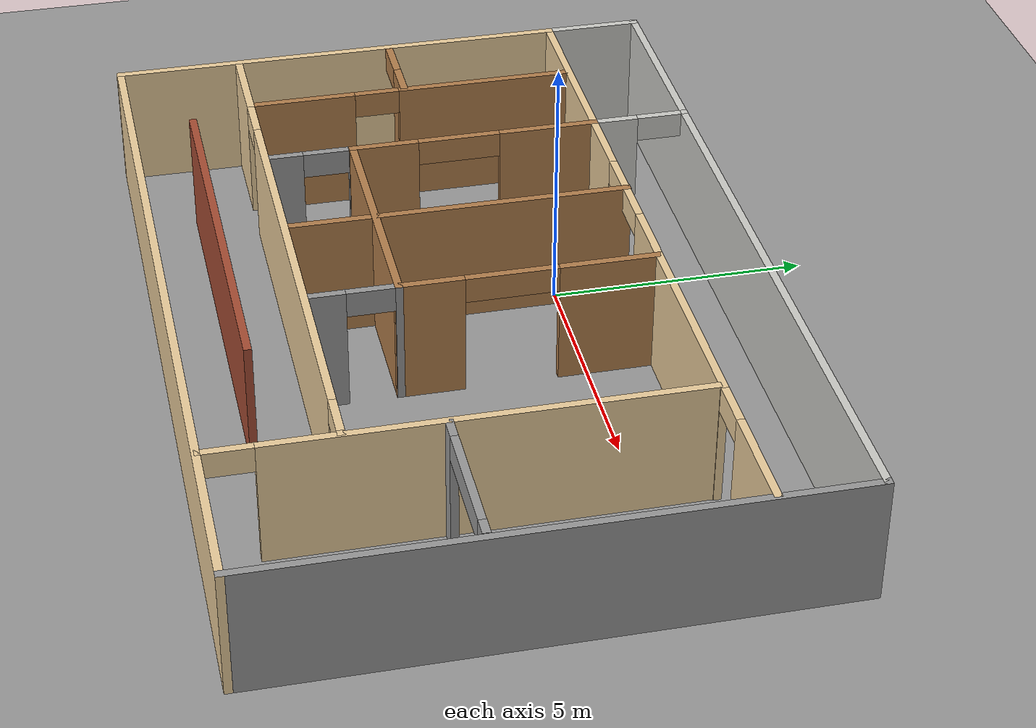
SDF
<sdf version="1.6">
 <world name="default">
  <model name="ground_plane">
   <static>1</static>
   <link name="link">
    <collision name="collision">
     <geometry><plane><normal>0 0 1</normal><size>100 100</size></plane></geometry>
     <surface><friction><ode><mu>100</mu><mu2>50</mu2></ode></friction></surface>
    </collision>
    <visual name="visual">
     <cast_shadows>0</cast_shadows>
     <geometry><plane><normal>0 0 1</normal><size>100 100</size></plane></geometry>
     <material>
      <script><uri>file://media/materials/scripts/gazebo.material</uri><name>Gazebo/Grey</name></script>
     </material>
    </visual>
   </link>
  </model>
  <model name="Building">
   <pose>1.84471 -2.27422 0 0 -0 0</pose>
   <link name="Wall_0">
    <collision name="Wall_0_Collision">
     <geometry><box><size>5 0.15 2.5</size></box></geometry>
     <pose>0 0 1.25 0 -0 0</pose>
    </collision>
    <visual name="Wall_0_Visual">
     <pose>0 0 1.25 0 -0 0</pose>
     <geometry><box><size>5 0.15 2.5</size></box></geometry>
     <material>
      <script><uri>file://media/materials/scripts/gazebo.material</uri><name>Gazebo/Wood</name></script>
      <ambient>1 1 1 1</ambient>
     </material>
     <meta><layer>0</layer></meta>
    </visual>
    <pose>-1.65 -1.275 0 0 -0 0</pose>
   </link>
   <link name="Wall_10">
    <collision name="Wall_10_Collision">
     <geometry><box><size>11 0.15 2.5</size></box></geometry>
     <pose>0 0 1.25 0 -0 0</pose>
    </collision>
    <visual name="Wall_10_Visual">
     <pose>0 0 1.25 0 -0 0</pose>
     <geometry><box><size>11 0.15 2.5</size></box></geometry>
     <material>
      <script><uri>file://media/materials/scripts/gazebo.material</uri><name>Gazebo/Grey</name></script>
      <ambient>1 1 1 1</ambient>
     </material>
     <meta><layer>0</layer></meta>
    </visual>
    <pose>7.925 0 0 0 0 -1.5708</pose>
   </link>
   <link name="Wall_11">
    <collision name="Wall_11_Collision">
     <geometry><box><size>16 0.15 2.5</size></box></geometry>
     <pose>0 0 1.25 0 -0 0</pose>
    </collision>
    <visual name="Wall_11_Visual">
     <pose>0 0 1.25 0 -0 0</pose>
     <geometry><box><size>16 0.15 2.5</size></box></geometry>
     <material>
      <script><uri>file://media/materials/scripts/gazebo.material</uri><name>Gazebo/Grey</name></script>
      <ambient>0.921569 0.807843 0.615686 1</ambient>
     </material>
     <meta><layer>0</layer></meta>
    </visual>
    <pose>0 -5.425 0 0 -0 3.14159</pose>
   </link>
   <link name="Wall_12">
    <collision name="Wall_12_Collision">
     <geometry><box><size>9.15 0.15 2.5</size></box></geometry>
     <pose>0 0 1.25 0 -0 0</pose>
    </collision>
    <visual name="Wall_12_Visual">
     <pose>0 0 1.25 0 -0 0</pose>
     <geometry><box><size>9.15 0.15 2.5</size></box></geometry>
     <material>
      <script><uri>file://media/materials/scripts/gazebo.material</uri><name>Gazebo/Grey</name></script>
      <ambient>0.921569 0.807843 0.615686 1</ambient>
     </material>
     <meta><layer>0</layer></meta>
    </visual>
    <pose>-7.925 -0.925 0 0 -0 1.5708</pose>
   </link>
   <link name="Wall_14">
    <collision name="Wall_14_Collision">
     <geometry><box><size>5 0.15 2.5</size></box></geometry>
     <pose>0 0 1.25 0 -0 0</pose>
    </collision>
    <visual name="Wall_14_Visual">
     <pose>0 0 1.25 0 -0 0</pose>
     <geometry><box><size>5 0.15 2.5</size></box></geometry>
     <material>
      <script><uri>file://media/materials/scripts/gazebo.material</uri><name>Gazebo/Wood</name></script>
      <ambient>1 1 1 1</ambient>
     </material>
     <meta><layer>0</layer></meta>
    </visual>
    <pose>-1.58093 1.16439 0 0 0 -1.5708</pose>
   </link>
   <link name="Wall_16">
    <pose>4.325 3.575 0 0 -0 0</pose>
    <visual name="Wall_16_Visual_0">
     <pose>-1.49954 0 1.25 0 -0 0</pose>
     <geometry><box><size>4.25093 0.15 2.5</size></box></geometry>
     <material>
      <script><uri>file://media/materials/scripts/gazebo.material</uri><name>Gazebo/Grey</name></script>
      <ambient>0.921569 0.807843 0.615686 1</ambient>
     </material>
     <meta><layer>0</layer></meta>
    </visual>
    <collision name="Wall_16_Collision_0">
     <geometry><box><size>4.25093 0.15 2.5</size></box></geometry>
     <pose>-1.49954 0 1.25 0 -0 0</pose>
    </collision>
    <visual name="Wall_16_Visual_1">
     <pose>2.57546 0 1.25 0 -0 0</pose>
     <geometry><box><size>2.09907 0.15 2.5</size></box></geometry>
     <material>
      <script><uri>file://media/materials/scripts/gazebo.material</uri><name>Gazebo/Grey</name></script>
      <ambient>0.921569 0.807843 0.615686 1</ambient>
     </material>
     <meta><layer>0</layer></meta>
    </visual>
    <collision name="Wall_16_Collision_1">
     <geometry><box><size>2.09907 0.15 2.5</size></box></geometry>
     <pose>2.57546 0 1.25 0 -0 0</pose>
    </collision>
    <visual name="Wall_16_Visual_2">
     <pose>1.07593 0 2.25 0 -0 0</pose>
     <geometry><box><size>0.9 0.15 0.5</size></box></geometry>
     <material>
      <script><uri>file://media/materials/scripts/gazebo.material</uri><name>Gazebo/Grey</name></script>
      <ambient>0.921569 0.807843 0.615686 1</ambient>
     </material>
     <meta><layer>0</layer></meta>
    </visual>
    <collision name="Wall_16_Collision_2">
     <geometry><box><size>0.9 0.15 0.5</size></box></geometry>
     <pose>1.07593 0 2.25 0 -0 0</pose>
    </collision>
   </link>
   <link name="Wall_2">
    <pose>-4.075 1.15 0 0 -0 1.5708</pose>
    <visual name="Wall_2_Visual_0">
     <pose>-1.81088 0 1.25 0 -0 0</pose>
     <geometry><box><size>1.37824 0.15 2.5</size></box></geometry>
     <material>
      <script><uri>file://media/materials/scripts/gazebo.material</uri><name>Gazebo/Wood</name></script>
      <ambient>1 1 1 1</ambient>
     </material>
     <meta><layer>0</layer></meta>
    </visual>
    <collision name="Wall_2_Collision_0">
     <geometry><box><size>1.37824 0.15 2.5</size></box></geometry>
     <pose>-1.81088 0 1.25 0 -0 0</pose>
    </collision>
    <visual name="Wall_2_Visual_1">
     <pose>1.50207 0 1.25 0 -0 0</pose>
     <geometry><box><size>1.99587 0.15 2.5</size></box></geometry>
     <material>
      <script><uri>file://media/materials/scripts/gazebo.material</uri><name>Gazebo/Wood</name></script>
      <ambient>1 1 1 1</ambient>
     </material>
     <meta><layer>0</layer></meta>
    </visual>
    <collision name="Wall_2_Collision_1">
     <geometry><box><size>1.99587 0.15 2.5</size></box></geometry>
     <pose>1.50207 0 1.25 0 -0 0</pose>
    </collision>
    <visual name="Wall_2_Visual_2">
     <pose>-0.308816 0 2.25 0 -0 0</pose>
     <geometry><box><size>1.6259 0.15 0.5</size></box></geometry>
     <material>
      <script><uri>file://media/materials/scripts/gazebo.material</uri><name>Gazebo/Wood</name></script>
      <ambient>1 1 1 1</ambient>
     </material>
     <meta><layer>0</layer></meta>
    </visual>
    <collision name="Wall_2_Collision_2">
     <geometry><box><size>1.6259 0.15 0.5</size></box></geometry>
     <pose>-0.308816 0 2.25 0 -0 0</pose>
    </collision>
   </link>
   <link name="Wall_22">
    <pose>4.85192 -0.951678 0 0 0 -1.5708</pose>
    <visual name="Wall_22_Visual_0">
     <pose>-0.499013 0 1.25 0 -0 0</pose>
     <geometry><box><size>8.00197 0.15 2.5</size></box></geometry>
     <material>
      <script><uri>file://media/materials/scripts/gazebo.material</uri><name>Gazebo/Grey</name></script>
      <ambient>0.921569 0.807843 0.615686 1</ambient>
     </material>
     <meta><layer>0</layer></meta>
    </visual>
    <collision name="Wall_22_Collision_0">
     <geometry><box><size>8.00197 0.15 2.5</size></box></geometry>
     <pose>-0.499013 0 1.25 0 -0 0</pose>
    </collision>
    <visual name="Wall_22_Visual_1">
     <pose>4.45099 0 1.25 0 -0 0</pose>
     <geometry><box><size>0.098027 0.15 2.5</size></box></geometry>
     <material>
      <script><uri>file://media/materials/scripts/gazebo.material</uri><name>Gazebo/Grey</name></script>
      <ambient>0.921569 0.807843 0.615686 1</ambient>
     </material>
     <meta><layer>0</layer></meta>
    </visual>
    <collision name="Wall_22_Collision_1">
     <geometry><box><size>0.098027 0.15 2.5</size></box></geometry>
     <pose>4.45099 0 1.25 0 -0 0</pose>
    </collision>
    <visual name="Wall_22_Visual_2">
     <pose>3.95197 0 2.25 0 -0 0</pose>
     <geometry><box><size>0.9 0.15 0.5</size></box></geometry>
     <material>
      <script><uri>file://media/materials/scripts/gazebo.material</uri><name>Gazebo/Grey</name></script>
      <ambient>0.921569 0.807843 0.615686 1</ambient>
     </material>
     <meta><layer>0</layer></meta>
    </visual>
    <collision name="Wall_22_Collision_2">
     <geometry><box><size>0.9 0.15 0.5</size></box></geometry>
     <pose>3.95197 0 2.25 0 -0 0</pose>
    </collision>
   </link>
   <link name="Wall_25">
    <pose>-1.48306 -2.998 0 0 -0 3.14159</pose>
    <visual name="Wall_25_Visual_0">
     <pose>-6.30396 0 1.25 0 -0 0</pose>
     <geometry><box><size>0.142088 0.15 2.5</size></box></geometry>
     <material>
      <script><uri>file://media/materials/scripts/gazebo.material</uri><name>Gazebo/Grey</name></script>
      <ambient>0.921569 0.807843 0.615686 1</ambient>
     </material>
     <meta><layer>0</layer></meta>
    </visual>
    <collision name="Wall_25_Collision_0">
     <geometry><box><size>0.142088 0.15 2.5</size></box></geometry>
     <pose>-6.30396 0 1.25 0 -0 0</pose>
    </collision>
    <visual name="Wall_25_Visual_1">
     <pose>-0.838657 0 1.25 0 -0 0</pose>
     <geometry><box><size>9.05712 0.15 2.5</size></box></geometry>
     <material>
      <script><uri>file://media/materials/scripts/gazebo.material</uri><name>Gazebo/Grey</name></script>
      <ambient>0.921569 0.807843 0.615686 1</ambient>
     </material>
     <meta><layer>0</layer></meta>
    </visual>
    <collision name="Wall_25_Collision_1">
     <geometry><box><size>9.05712 0.15 2.5</size></box></geometry>
     <pose>-0.838657 0 1.25 0 -0 0</pose>
    </collision>
    <visual name="Wall_25_Visual_2">
     <pose>5.48245 0 1.25 0 -0 0</pose>
     <geometry><box><size>1.7851 0.15 2.5</size></box></geometry>
     <material>
      <script><uri>file://media/materials/scripts/gazebo.material</uri><name>Gazebo/Grey</name></script>
      <ambient>0.921569 0.807843 0.615686 1</ambient>
     </material>
     <meta><layer>0</layer></meta>
    </visual>
    <collision name="Wall_25_Collision_2">
     <geometry><box><size>1.7851 0.15 2.5</size></box></geometry>
     <pose>5.48245 0 1.25 0 -0 0</pose>
    </collision>
    <visual name="Wall_25_Visual_3">
     <pose>-5.80007 0 2.25 0 -0 0</pose>
     <geometry><box><size>0.865695 0.15 0.5</size></box></geometry>
     <material>
      <script><uri>file://media/materials/scripts/gazebo.material</uri><name>Gazebo/Grey</name></script>
      <ambient>0.921569 0.807843 0.615686 1</ambient>
     </material>
     <meta><layer>0</layer></meta>
    </visual>
    <collision name="Wall_25_Collision_3">
     <geometry><box><size>0.865695 0.15 0.5</size></box></geometry>
     <pose>-5.80007 0 2.25 0 -0 0</pose>
    </collision>
    <visual name="Wall_25_Visual_4">
     <pose>4.1399 0 2.25 0 -0 0</pose>
     <geometry><box><size>0.9 0.15 0.5</size></box></geometry>
     <material>
      <script><uri>file://media/materials/scripts/gazebo.material</uri><name>Gazebo/Grey</name></script>
      <ambient>0.921569 0.807843 0.615686 1</ambient>
     </material>
     <meta><layer>0</layer></meta>
    </visual>
    <collision name="Wall_25_Collision_4">
     <geometry><box><size>0.9 0.15 0.5</size></box></geometry>
     <pose>4.1399 0 2.25 0 -0 0</pose>
    </collision>
   </link>
   <link name="Wall_27">
    <pose>-6.14068 0.284689 0 0 0 -1.5708</pose>
    <visual name="Wall_27_Visual_0">
     <pose>-1.49304 0 1.25 0 -0 0</pose>
     <geometry><box><size>3.51392 0.15 2.5</size></box></geometry>
     <material>
      <script><uri>file://media/materials/scripts/gazebo.material</uri><name>Gazebo/Wood</name></script>
      <ambient>1 1 1 1</ambient>
     </material>
     <meta><layer>0</layer></meta>
    </visual>
    <collision name="Wall_27_Collision_0">
     <geometry><box><size>3.51392 0.15 2.5</size></box></geometry>
     <pose>-1.49304 0 1.25 0 -0 0</pose>
    </collision>
    <visual name="Wall_27_Visual_1">
     <pose>2.20696 0 1.25 0 -0 0</pose>
     <geometry><box><size>2.08608 0.15 2.5</size></box></geometry>
     <material>
      <script><uri>file://media/materials/scripts/gazebo.material</uri><name>Gazebo/Wood</name></script>
      <ambient>1 1 1 1</ambient>
     </material>
     <meta><layer>0</layer></meta>
    </visual>
    <collision name="Wall_27_Collision_1">
     <geometry><box><size>2.08608 0.15 2.5</size></box></geometry>
     <pose>2.20696 0 1.25 0 -0 0</pose>
    </collision>
    <visual name="Wall_27_Visual_2">
     <pose>0.713923 0 2.25 0 -0 0</pose>
     <geometry><box><size>0.9 0.15 0.5</size></box></geometry>
     <material>
      <script><uri>file://media/materials/scripts/gazebo.material</uri><name>Gazebo/Wood</name></script>
      <ambient>1 1 1 1</ambient>
     </material>
     <meta><layer>0</layer></meta>
    </visual>
    <collision name="Wall_27_Collision_2">
     <geometry><box><size>0.9 0.15 0.5</size></box></geometry>
     <pose>0.713923 0 2.25 0 -0 0</pose>
    </collision>
   </link>
   <link name="Wall_29">
    <pose>6.3362 -1.18544 0 0 -0 0</pose>
    <visual name="Wall_29_Visual_0">
     <pose>-1.27306 0 1.25 0 -0 0</pose>
     <geometry><box><size>0.453869 0.15 2.5</size></box></geometry>
     <material>
      <script><uri>file://media/materials/scripts/gazebo.material</uri><name>Gazebo/Grey</name></script>
      <ambient>1 1 1 1</ambient>
     </material>
     <meta><layer>0</layer></meta>
    </visual>
    <collision name="Wall_29_Collision_0">
     <geometry><box><size>0.453869 0.15 2.5</size></box></geometry>
     <pose>-1.27306 0 1.25 0 -0 0</pose>
    </collision>
    <visual name="Wall_29_Visual_1">
     <pose>1.33007 0 1.25 0 -0 0</pose>
     <geometry><box><size>0.339865 0.15 2.5</size></box></geometry>
     <material>
      <script><uri>file://media/materials/scripts/gazebo.material</uri><name>Gazebo/Grey</name></script>
      <ambient>1 1 1 1</ambient>
     </material>
     <meta><layer>0</layer></meta>
    </visual>
    <collision name="Wall_29_Collision_1">
     <geometry><box><size>0.339865 0.15 2.5</size></box></geometry>
     <pose>1.33007 0 1.25 0 -0 0</pose>
    </collision>
    <visual name="Wall_29_Visual_2">
     <pose>0.057002 0 2.25 0 -0 0</pose>
     <geometry><box><size>2.20627 0.15 0.5</size></box></geometry>
     <material>
      <script><uri>file://media/materials/scripts/gazebo.material</uri><name>Gazebo/Grey</name></script>
      <ambient>1 1 1 1</ambient>
     </material>
     <meta><layer>0</layer></meta>
    </visual>
    <collision name="Wall_29_Collision_2">
     <geometry><box><size>2.20627 0.15 0.5</size></box></geometry>
     <pose>0.057002 0 2.25 0 -0 0</pose>
    </collision>
   </link>
   <link name="Wall_3">
    <pose>-1.65 3.575 0 0 -0 0</pose>
    <visual name="Wall_3_Visual_0">
     <pose>-1.69786 0 1.25 0 -0 0</pose>
     <geometry><box><size>1.60428 0.15 2.5</size></box></geometry>
     <material>
      <script><uri>file://media/materials/scripts/gazebo.material</uri><name>Gazebo/Grey</name></script>
      <ambient>0.921569 0.807843 0.615686 1</ambient>
     </material>
     <meta><layer>0</layer></meta>
    </visual>
    <collision name="Wall_3_Collision_0">
     <geometry><box><size>1.60428 0.15 2.5</size></box></geometry>
     <pose>-1.69786 0 1.25 0 -0 0</pose>
    </collision>
    <visual name="Wall_3_Visual_1">
     <pose>0.066943 0 1.25 0 -0 0</pose>
     <geometry><box><size>0.125322 0.15 2.5</size></box></geometry>
     <material>
      <script><uri>file://media/materials/scripts/gazebo.material</uri><name>Gazebo/Grey</name></script>
      <ambient>0.921569 0.807843 0.615686 1</ambient>
     </material>
     <meta><layer>0</layer></meta>
    </visual>
    <collision name="Wall_3_Collision_1">
     <geometry><box><size>0.125322 0.15 2.5</size></box></geometry>
     <pose>0.066943 0 1.25 0 -0 0</pose>
    </collision>
    <visual name="Wall_3_Visual_2">
     <pose>1.7648 0 1.25 0 -0 0</pose>
     <geometry><box><size>1.4704 0.15 2.5</size></box></geometry>
     <material>
      <script><uri>file://media/materials/scripts/gazebo.material</uri><name>Gazebo/Grey</name></script>
      <ambient>0.921569 0.807843 0.615686 1</ambient>
     </material>
     <meta><layer>0</layer></meta>
    </visual>
    <collision name="Wall_3_Collision_2">
     <geometry><box><size>1.4704 0.15 2.5</size></box></geometry>
     <pose>1.7648 0 1.25 0 -0 0</pose>
    </collision>
    <visual name="Wall_3_Visual_3">
     <pose>-0.445718 0 2.25 0 -0 0</pose>
     <geometry><box><size>0.9 0.15 0.5</size></box></geometry>
     <material>
      <script><uri>file://media/materials/scripts/gazebo.material</uri><name>Gazebo/Grey</name></script>
      <ambient>0.921569 0.807843 0.615686 1</ambient>
     </material>
     <meta><layer>0</layer></meta>
    </visual>
    <collision name="Wall_3_Collision_3">
     <geometry><box><size>0.9 0.15 0.5</size></box></geometry>
     <pose>-0.445718 0 2.25 0 -0 0</pose>
    </collision>
    <visual name="Wall_3_Visual_4">
     <pose>0.579604 0 2.25 0 -0 0</pose>
     <geometry><box><size>0.9 0.15 0.5</size></box></geometry>
     <material>
      <script><uri>file://media/materials/scripts/gazebo.material</uri><name>Gazebo/Grey</name></script>
      <ambient>0.921569 0.807843 0.615686 1</ambient>
     </material>
     <meta><layer>0</layer></meta>
    </visual>
    <collision name="Wall_3_Collision_4">
     <geometry><box><size>0.9 0.15 0.5</size></box></geometry>
     <pose>0.579604 0 2.25 0 -0 0</pose>
    </collision>
   </link>
   <link name="Wall_31">
    <pose>-7.02156 0.143806 0 0 -0 0</pose>
    <visual name="Wall_31_Visual_0">
     <pose>-0.852619 0 1.25 0 -0 0</pose>
     <geometry><box><size>0.044761 0.15 2.5</size></box></geometry>
     <material>
      <script><uri>file://media/materials/scripts/gazebo.material</uri><name>Gazebo/Wood</name></script>
      <ambient>1 1 1 1</ambient>
     </material>
     <meta><layer>0</layer></meta>
    </visual>
    <collision name="Wall_31_Collision_0">
     <geometry><box><size>0.044761 0.15 2.5</size></box></geometry>
     <pose>-0.852619 0 1.25 0 -0 0</pose>
    </collision>
    <visual name="Wall_31_Visual_1">
     <pose>0.472381 0 1.25 0 -0 0</pose>
     <geometry><box><size>0.805239 0.15 2.5</size></box></geometry>
     <material>
      <script><uri>file://media/materials/scripts/gazebo.material</uri><name>Gazebo/Wood</name></script>
      <ambient>1 1 1 1</ambient>
     </material>
     <meta><layer>0</layer></meta>
    </visual>
    <collision name="Wall_31_Collision_1">
     <geometry><box><size>0.805239 0.15 2.5</size></box></geometry>
     <pose>0.472381 0 1.25 0 -0 0</pose>
    </collision>
    <visual name="Wall_31_Visual_2">
     <pose>-0.380239 0 2.25 0 -0 0</pose>
     <geometry><box><size>0.9 0.15 0.5</size></box></geometry>
     <material>
      <script><uri>file://media/materials/scripts/gazebo.material</uri><name>Gazebo/Wood</name></script>
      <ambient>1 1 1 1</ambient>
     </material>
     <meta><layer>0</layer></meta>
    </visual>
    <collision name="Wall_31_Collision_2">
     <geometry><box><size>0.9 0.15 0.5</size></box></geometry>
     <pose>-0.380239 0 2.25 0 -0 0</pose>
    </collision>
   </link>
   <link name="Wall_33">
    <collision name="Wall_33_Collision">
     <geometry><box><size>8 0.15 2.5</size></box></geometry>
     <pose>0 0 1.25 0 -0 0</pose>
    </collision>
    <visual name="Wall_33_Visual">
     <pose>0 0 1.25 0 -0 0</pose>
     <geometry><box><size>8 0.15 2.5</size></box></geometry>
     <material>
      <script><uri>file://media/materials/scripts/gazebo.material</uri><name>Gazebo/Bricks</name></script>
      <ambient>1 1 1 1</ambient>
     </material>
     <meta><layer>0</layer></meta>
    </visual>
    <pose>-1.83273 -4.19373 0 0 -0 0</pose>
   </link>
   <link name="Wall_35">
    <collision name="Wall_35_Collision">
     <geometry><box><size>1.75 0.15 2.5</size></box></geometry>
     <pose>0 0 1.25 0 -0 0</pose>
    </collision>
    <visual name="Wall_35_Visual">
     <pose>0 0 1.25 0 -0 0</pose>
     <geometry><box><size>1.75 0.15 2.5</size></box></geometry>
     <material>
      <script><uri>file://media/materials/scripts/gazebo.material</uri><name>Gazebo/Wood</name></script>
      <ambient>0.435294 0.796078 0.67451 1</ambient>
     </material>
     <meta><layer>0</layer></meta>
    </visual>
    <pose>-1.58093 -2.06061 0 0 0 -1.5708</pose>
   </link>
   <link name="Wall_37">
    <pose>-4.075 -2.075 0 0 0 -1.5708</pose>
    <visual name="Wall_37_Visual_0">
     <pose>-0.795598 0 1.25 0 -0 0</pose>
     <geometry><box><size>0.158804 0.15 2.5</size></box></geometry>
     <material>
      <script><uri>file://media/materials/scripts/gazebo.material</uri><name>Gazebo/Grey</name></script>
      <ambient>1 1 1 1</ambient>
     </material>
     <meta><layer>0</layer></meta>
    </visual>
    <collision name="Wall_37_Collision_0">
     <geometry><box><size>0.158804 0.15 2.5</size></box></geometry>
     <pose>-0.795598 0 1.25 0 -0 0</pose>
    </collision>
    <visual name="Wall_37_Visual_1">
     <pose>0.529402 0 1.25 0 -0 0</pose>
     <geometry><box><size>0.691196 0.15 2.5</size></box></geometry>
     <material>
      <script><uri>file://media/materials/scripts/gazebo.material</uri><name>Gazebo/Grey</name></script>
      <ambient>1 1 1 1</ambient>
     </material>
     <meta><layer>0</layer></meta>
    </visual>
    <collision name="Wall_37_Collision_1">
     <geometry><box><size>0.691196 0.15 2.5</size></box></geometry>
     <pose>0.529402 0 1.25 0 -0 0</pose>
    </collision>
    <visual name="Wall_37_Visual_2">
     <pose>-0.266196 0 2.25 0 -0 0</pose>
     <geometry><box><size>0.9 0.15 0.5</size></box></geometry>
     <material>
      <script><uri>file://media/materials/scripts/gazebo.material</uri><name>Gazebo/Grey</name></script>
      <ambient>1 1 1 1</ambient>
     </material>
     <meta><layer>0</layer></meta>
    </visual>
    <collision name="Wall_37_Collision_2">
     <geometry><box><size>0.9 0.15 0.5</size></box></geometry>
     <pose>-0.266196 0 2.25 0 -0 0</pose>
    </collision>
   </link>
   <link name="Wall_39">
    <pose>0.775 -2.075 0 0 0 -1.5708</pose>
    <visual name="Wall_39_Visual_0">
     <pose>-0.804422 0 1.25 0 -0 0</pose>
     <geometry><box><size>0.141156 0.15 2.5</size></box></geometry>
     <material>
      <script><uri>file://media/materials/scripts/gazebo.material</uri><name>Gazebo/Grey</name></script>
      <ambient>1 1 1 1</ambient>
     </material>
     <meta><layer>0</layer></meta>
    </visual>
    <collision name="Wall_39_Collision_0">
     <geometry><box><size>0.141156 0.15 2.5</size></box></geometry>
     <pose>-0.804422 0 1.25 0 -0 0</pose>
    </collision>
    <visual name="Wall_39_Visual_1">
     <pose>0.520578 0 1.25 0 -0 0</pose>
     <geometry><box><size>0.708844 0.15 2.5</size></box></geometry>
     <material>
      <script><uri>file://media/materials/scripts/gazebo.material</uri><name>Gazebo/Grey</name></script>
      <ambient>1 1 1 1</ambient>
     </material>
     <meta><layer>0</layer></meta>
    </visual>
    <collision name="Wall_39_Collision_1">
     <geometry><box><size>0.708844 0.15 2.5</size></box></geometry>
     <pose>0.520578 0 1.25 0 -0 0</pose>
    </collision>
    <visual name="Wall_39_Visual_2">
     <pose>-0.283844 0 2.25 0 -0 0</pose>
     <geometry><box><size>0.9 0.15 0.5</size></box></geometry>
     <material>
      <script><uri>file://media/materials/scripts/gazebo.material</uri><name>Gazebo/Grey</name></script>
      <ambient>1 1 1 1</ambient>
     </material>
     <meta><layer>0</layer></meta>
    </visual>
    <collision name="Wall_39_Collision_2">
     <geometry><box><size>0.9 0.15 0.5</size></box></geometry>
     <pose>-0.283844 0 2.25 0 -0 0</pose>
    </collision>
   </link>
   <link name="Wall_4">
    <pose>0.775 1.15 0 0 0 -1.5708</pose>
    <visual name="Wall_4_Visual_0">
     <pose>-1.52402 0 1.25 0 -0 0</pose>
     <geometry><box><size>1.95195 0.15 2.5</size></box></geometry>
     <material>
      <script><uri>file://media/materials/scripts/gazebo.material</uri><name>Gazebo/Wood</name></script>
      <ambient>1 1 1 1</ambient>
     </material>
     <meta><layer>0</layer></meta>
    </visual>
    <collision name="Wall_4_Collision_0">
     <geometry><box><size>1.95195 0.15 2.5</size></box></geometry>
     <pose>-1.52402 0 1.25 0 -0 0</pose>
    </collision>
    <visual name="Wall_4_Visual_1">
     <pose>1.85273 0 1.25 0 -0 0</pose>
     <geometry><box><size>1.29455 0.15 2.5</size></box></geometry>
     <material>
      <script><uri>file://media/materials/scripts/gazebo.material</uri><name>Gazebo/Wood</name></script>
      <ambient>1 1 1 1</ambient>
     </material>
     <meta><layer>0</layer></meta>
    </visual>
    <collision name="Wall_4_Collision_1">
     <geometry><box><size>1.29455 0.15 2.5</size></box></geometry>
     <pose>1.85273 0 1.25 0 -0 0</pose>
    </collision>
    <visual name="Wall_4_Visual_2">
     <pose>0.328703 0 2.25 0 -0 0</pose>
     <geometry><box><size>1.7535 0.15 0.5</size></box></geometry>
     <material>
      <script><uri>file://media/materials/scripts/gazebo.material</uri><name>Gazebo/Wood</name></script>
      <ambient>1 1 1 1</ambient>
     </material>
     <meta><layer>0</layer></meta>
    </visual>
    <collision name="Wall_4_Collision_2">
     <geometry><box><size>1.7535 0.15 0.5</size></box></geometry>
     <pose>0.328703 0 2.25 0 -0 0</pose>
    </collision>
   </link>
   <link name="Wall_42">
    <pose>-4.075 4.5 0 0 -0 1.5708</pose>
    <visual name="Wall_42_Visual_0">
     <pose>-0.518886 0 1.25 0 -0 0</pose>
     <geometry><box><size>0.962229 0.15 2.5</size></box></geometry>
     <material>
      <script><uri>file://media/materials/scripts/gazebo.material</uri><name>Gazebo/CeilingTiled</name></script>
      <ambient>1 1 1 1</ambient>
     </material>
     <meta><layer>0</layer></meta>
    </visual>
    <collision name="Wall_42_Collision_0">
     <geometry><box><size>0.962229 0.15 2.5</size></box></geometry>
     <pose>-0.518886 0 1.25 0 -0 0</pose>
    </collision>
    <visual name="Wall_42_Visual_1">
     <pose>0.931114 0 1.25 0 -0 0</pose>
     <geometry><box><size>0.137771 0.15 2.5</size></box></geometry>
     <material>
      <script><uri>file://media/materials/scripts/gazebo.material</uri><name>Gazebo/CeilingTiled</name></script>
      <ambient>1 1 1 1</ambient>
     </material>
     <meta><layer>0</layer></meta>
    </visual>
    <collision name="Wall_42_Collision_1">
     <geometry><box><size>0.137771 0.15 2.5</size></box></geometry>
     <pose>0.931114 0 1.25 0 -0 0</pose>
    </collision>
    <visual name="Wall_42_Visual_2">
     <pose>0.412229 0 2.25 0 -0 0</pose>
     <geometry><box><size>0.9 0.15 0.5</size></box></geometry>
     <material>
      <script><uri>file://media/materials/scripts/gazebo.material</uri><name>Gazebo/CeilingTiled</name></script>
      <ambient>1 1 1 1</ambient>
     </material>
     <meta><layer>0</layer></meta>
    </visual>
    <collision name="Wall_42_Collision_2">
     <geometry><box><size>0.9 0.15 0.5</size></box></geometry>
     <pose>0.412229 0 2.25 0 -0 0</pose>
    </collision>
   </link>
   <link name="Wall_6">
    <collision name="Wall_6_Collision">
     <geometry><box><size>4 0.15 2.5</size></box></geometry>
     <pose>0 0 1.25 0 -0 0</pose>
    </collision>
    <visual name="Wall_6_Visual">
     <pose>0 0 1.25 0 -0 0</pose>
     <geometry><box><size>4 0.15 2.5</size></box></geometry>
     <material>
      <script><uri>file://media/materials/scripts/gazebo.material</uri><name>Gazebo/Grey</name></script>
      <ambient>0.921569 0.807843 0.615686 1</ambient>
     </material>
     <meta><layer>0</layer></meta>
    </visual>
    <pose>-6 3.575 0 0 -0 3.14159</pose>
   </link>
   <link name="Wall_7">
    <collision name="Wall_7_Collision">
     <geometry><box><size>2 0.15 2.5</size></box></geometry>
     <pose>0 0 1.25 0 -0 0</pose>
    </collision>
    <visual name="Wall_7_Visual">
     <pose>0 0 1.25 0 -0 0</pose>
     <geometry><box><size>2 0.15 2.5</size></box></geometry>
     <material>
      <script><uri>file://media/materials/scripts/gazebo.material</uri><name>Gazebo/CeilingTiled</name></script>
      <ambient>1 1 1 1</ambient>
     </material>
     <meta><layer>0</layer></meta>
    </visual>
    <pose>-7.925 4.5 0 0 -0 1.5708</pose>
   </link>
   <link name="Wall_9">
    <collision name="Wall_9_Collision">
     <geometry><box><size>16 0.15 2.5</size></box></geometry>
     <pose>0 0 1.25 0 -0 0</pose>
    </collision>
    <visual name="Wall_9_Visual">
     <pose>0 0 1.25 0 -0 0</pose>
     <geometry><box><size>16 0.15 2.5</size></box></geometry>
     <material>
      <script><uri>file://media/materials/scripts/gazebo.material</uri><name>Gazebo/CeilingTiled</name></script>
      <ambient>1 1 1 1</ambient>
     </material>
     <meta><layer>0</layer></meta>
    </visual>
    <pose>0 5.425 0 0 -0 0</pose>
   </link>
   <static>1</static>
  </model>
  <model name="ground_plane_0">
   <static>1</static>
   <link name="link">
    <collision name="collision">
     <geometry><plane><normal>0 0 1</normal><size>100 100</size></plane></geometry>
     <surface><friction><ode><mu>100</mu><mu2>50</mu2></ode></friction></surface>
    </collision>
    <visual name="visual">
     <cast_shadows>0</cast_shadows>
     <geometry><plane><normal>0 0 1</normal><size>100 100</size></plane></geometry>
     <material>
      <script><uri>file://media/materials/scripts/gazebo.material</uri><name>Gazebo/Grey</name></script>
     </material>
    </visual>
   </link>
   <pose>4.39275 -1.64817 0 0 -0 0</pose>
  </model>
  <model name="HumonoidRobot_0">
   <link name="link_0">
    <pose>-0.075081 0.045022 -0.236474 0 -0 0</pose>
    <inertial>
     <mass>1</mass>
     <inertia>
      <ixx>0.166667</ixx>
      <ixy>0</ixy>
      <ixz>0</ixz>
      <iyy>0.166667</iyy>
      <iyz>0</iyz>
      <izz>0.166667</izz>
     </inertia>
    </inertial>
    <visual name="visual">
     <geometry><box><size>0.1 0.2 0.05</size></box></geometry>
     <material>
      <lighting>1</lighting>
      <script><uri>file://media/materials/scripts/gazebo.material</uri><name>Gazebo/Grey</name></script>
      <shader type="pixel"><normal_map>__default__</normal_map></shader>
      <ambient>0.3 0.3 0.3 1</ambient>
      <diffuse>0.7 0.7 0.7 1</diffuse>
      <specular>0.01 0.01 0.01 1</specular>
      <emissive>0 0 0 1</emissive>
     </material>
    </visual>
    <collision name="collision">
     <geometry><box><size>0.1 0.2 0.05</size></box></geometry>
     <surface>
      <friction>
       <ode><mu>1</mu><mu2>1</mu2><fdir1>0 0 0</fdir1><slip1>0</slip1><slip2>0</slip2></ode>
       <torsional>
        <coefficient>1</coefficient>
        <patch_radius>0</patch_radius>
        <surface_radius>0</surface_radius>
        <use_patch_radius>1</use_patch_radius>
        <ode><slip>0</slip></ode>
       </torsional>
      </friction>
      <bounce><restitution_coefficient>0</restitution_coefficient><threshold>1e+06</threshold></bounce>
      <contact>
       <collide_without_contact>0</collide_without_contact>
       <collide_without_contact_bitmask>1</collide_without_contact_bitmask>
       <collide_bitmask>1</collide_bitmask>
       <ode>
        <soft_cfm>0</soft_cfm>
        <soft_erp>0.2</soft_erp>
        <kp>1e+13</kp>
        <kd>1</kd>
        <max_vel>0.01</max_vel>
        <min_depth>0</min_depth>
       </ode>
       <bullet>
        <split_impulse>1</split_impulse>
        <split_impulse_penetration_threshold>-0.01</split_impulse_penetration_threshold>
        <soft_cfm>0</soft_cfm>
        <soft_erp>0.2</soft_erp>
        <kp>1e+13</kp>
        <kd>1</kd>
       </bullet>
      </contact>
     </surface>
    </collision>
   </link>
   <link name="link_0_clone">
    <pose>0.074919 0.045022 -0.236474 0 -0 0</pose>
    <inertial>
     <mass>1</mass>
     <inertia>
      <ixx>0.166667</ixx>
      <ixy>0</ixy>
      <ixz>0</ixz>
      <iyy>0.166667</iyy>
      <iyz>0</iyz>
      <izz>0.166667</izz>
     </inertia>
    </inertial>
    <visual name="visual">
     <geometry><box><size>0.1 0.2 0.05</size></box></geometry>
     <material>
      <lighting>1</lighting>
      <script><uri>file://media/materials/scripts/gazebo.material</uri><name>Gazebo/Grey</name></script>
      <shader type="pixel"><normal_map>__default__</normal_map></shader>
      <ambient>0.3 0.3 0.3 1</ambient>
      <diffuse>0.7 0.7 0.7 1</diffuse>
      <specular>0.01 0.01 0.01 1</specular>
      <emissive>0 0 0 1</emissive>
     </material>
    </visual>
    <collision name="collision">
     <geometry><box><size>0.1 0.2 0.05</size></box></geometry>
     <surface>
      <friction>
       <ode><mu>1</mu><mu2>1</mu2><fdir1>0 0 0</fdir1><slip1>0</slip1><slip2>0</slip2></ode>
       <torsional>
        <coefficient>1</coefficient>
        <patch_radius>0</patch_radius>
        <surface_radius>0</surface_radius>
        <use_patch_radius>1</use_patch_radius>
        <ode><slip>0</slip></ode>
       </torsional>
      </friction>
      <bounce><restitution_coefficient>0</restitution_coefficient><threshold>1e+06</threshold></bounce>
      <contact>
       <collide_without_contact>0</collide_without_contact>
       <collide_without_contact_bitmask>1</collide_without_contact_bitmask>
       <collide_bitmask>1</collide_bitmask>
       <ode>
        <soft_cfm>0</soft_cfm>
        <soft_erp>0.2</soft_erp>
        <kp>1e+13</kp>
        <kd>1</kd>
        <max_vel>0.01</max_vel>
        <min_depth>0</min_depth>
       </ode>
       <bullet>
        <split_impulse>1</split_impulse>
        <split_impulse_penetration_threshold>-0.01</split_impulse_penetration_threshold>
        <soft_cfm>0</soft_cfm>
        <soft_erp>0.2</soft_erp>
        <kp>1e+13</kp>
        <kd>1</kd>
       </bullet>
      </contact>
     </surface>
    </collision>
   </link>
   <link name="link_0_clone_0">
    <pose>0.000486 -0.069978 0.341184 0 -0 0</pose>
    <inertial>
     <mass>1</mass>
     <inertia>
      <ixx>0.166667</ixx>
      <ixy>0</ixy>
      <ixz>0</ixz>
      <iyy>0.166667</iyy>
      <iyz>0</iyz>
      <izz>0.166667</izz>
     </inertia>
    </inertial>
    <visual name="visual">
     <geometry><box><size>0.25 0.2 0.05</size></box></geometry>
     <material>
      <lighting>1</lighting>
      <script><uri>file://media/materials/scripts/gazebo.material</uri><name>Gazebo/Grey</name></script>
      <shader type="pixel"><normal_map>__default__</normal_map></shader>
      <ambient>0.3 0.3 0.3 1</ambient>
      <diffuse>0.7 0.7 0.7 1</diffuse>
      <specular>0.01 0.01 0.01 1</specular>
      <emissive>0 0 0 1</emissive>
     </material>
    </visual>
    <collision name="collision">
     <geometry><box><size>0.25 0.2 0.05</size></box></geometry>
     <surface>
      <friction>
       <ode><mu>1</mu><mu2>1</mu2><fdir1>0 0 0</fdir1><slip1>0</slip1><slip2>0</slip2></ode>
       <torsional>
        <coefficient>1</coefficient>
        <patch_radius>0</patch_radius>
        <surface_radius>0</surface_radius>
        <use_patch_radius>1</use_patch_radius>
        <ode><slip>0</slip></ode>
       </torsional>
      </friction>
      <bounce><restitution_coefficient>0</restitution_coefficient><threshold>1e+06</threshold></bounce>
      <contact>
       <collide_without_contact>0</collide_without_contact>
       <collide_without_contact_bitmask>1</collide_without_contact_bitmask>
       <collide_bitmask>1</collide_bitmask>
       <ode>
        <soft_cfm>0</soft_cfm>
        <soft_erp>0.2</soft_erp>
        <kp>1e+13</kp>
        <kd>1</kd>
        <max_vel>0.01</max_vel>
        <min_depth>0</min_depth>
       </ode>
       <bullet>
        <split_impulse>1</split_impulse>
        <split_impulse_penetration_threshold>-0.01</split_impulse_penetration_threshold>
        <soft_cfm>0</soft_cfm>
        <soft_erp>0.2</soft_erp>
        <kp>1e+13</kp>
        <kd>1</kd>
       </bullet>
      </contact>
     </surface>
    </collision>
   </link>
   <link name="link_1">
    <pose>-0.075081 0.045022 -0.111474 0 -0 0</pose>
    <inertial>
     <mass>1</mass>
     <inertia>
      <ixx>0.166667</ixx>
      <ixy>0</ixy>
      <ixz>0</ixz>
      <iyy>0.166667</iyy>
      <iyz>0</iyz>
      <izz>0.166667</izz>
     </inertia>
    </inertial>
    <visual name="visual">
     <geometry><box><size>0.03 0.03 0.3</size></box></geometry>
     <material>
      <lighting>1</lighting>
      <script><uri>file://media/materials/scripts/gazebo.material</uri><name>Gazebo/Grey</name></script>
      <shader type="pixel"><normal_map>__default__</normal_map></shader>
      <ambient>0.3 0.3 0.3 1</ambient>
      <diffuse>0.7 0.7 0.7 1</diffuse>
      <specular>0.01 0.01 0.01 1</specular>
      <emissive>0 0 0 1</emissive>
     </material>
    </visual>
    <collision name="collision">
     <geometry><box><size>0.03 0.03 0.3</size></box></geometry>
     <surface>
      <friction>
       <ode><mu>1</mu><mu2>1</mu2><fdir1>0 0 0</fdir1><slip1>0</slip1><slip2>0</slip2></ode>
       <torsional>
        <coefficient>1</coefficient>
        <patch_radius>0</patch_radius>
        <surface_radius>0</surface_radius>
        <use_patch_radius>1</use_patch_radius>
        <ode><slip>0</slip></ode>
       </torsional>
      </friction>
      <bounce><restitution_coefficient>0</restitution_coefficient><threshold>1e+06</threshold></bounce>
      <contact>
       <collide_without_contact>0</collide_without_contact>
       <collide_without_contact_bitmask>1</collide_without_contact_bitmask>
       <collide_bitmask>1</collide_bitmask>
       <ode>
        <soft_cfm>0</soft_cfm>
        <soft_erp>0.2</soft_erp>
        <kp>1e+13</kp>
        <kd>1</kd>
        <max_vel>0.01</max_vel>
        <min_depth>0</min_depth>
       </ode>
       <bullet>
        <split_impulse>1</split_impulse>
        <split_impulse_penetration_threshold>-0.01</split_impulse_penetration_threshold>
        <soft_cfm>0</soft_cfm>
        <soft_erp>0.2</soft_erp>
        <kp>1e+13</kp>
        <kd>1</kd>
       </bullet>
      </contact>
     </surface>
    </collision>
   </link>
   <link name="link_1_clone">
    <pose>0.074919 0.045022 -0.111474 0 -0 0</pose>
    <inertial>
     <mass>1</mass>
     <inertia>
      <ixx>0.166667</ixx>
      <ixy>0</ixy>
      <ixz>0</ixz>
      <iyy>0.166667</iyy>
      <iyz>0</iyz>
      <izz>0.166667</izz>
     </inertia>
    </inertial>
    <visual name="visual">
     <geometry><box><size>0.03 0.03 0.3</size></box></geometry>
     <material>
      <lighting>1</lighting>
      <script><uri>file://media/materials/scripts/gazebo.material</uri><name>Gazebo/Grey</name></script>
      <shader type="pixel"><normal_map>__default__</normal_map></shader>
      <ambient>0.3 0.3 0.3 1</ambient>
      <diffuse>0.7 0.7 0.7 1</diffuse>
      <specular>0.01 0.01 0.01 1</specular>
      <emissive>0 0 0 1</emissive>
     </material>
    </visual>
    <collision name="collision">
     <geometry><box><size>0.03 0.03 0.3</size></box></geometry>
     <surface>
      <friction>
       <ode><mu>1</mu><mu2>1</mu2><fdir1>0 0 0</fdir1><slip1>0</slip1><slip2>0</slip2></ode>
       <torsional>
        <coefficient>1</coefficient>
        <patch_radius>0</patch_radius>
        <surface_radius>0</surface_radius>
        <use_patch_radius>1</use_patch_radius>
        <ode><slip>0</slip></ode>
       </torsional>
      </friction>
      <bounce><restitution_coefficient>0</restitution_coefficient><threshold>1e+06</threshold></bounce>
      <contact>
       <collide_without_contact>0</collide_without_contact>
       <collide_without_contact_bitmask>1</collide_without_contact_bitmask>
       <collide_bitmask>1</collide_bitmask>
       <ode>
        <soft_cfm>0</soft_cfm>
        <soft_erp>0.2</soft_erp>
        <kp>1e+13</kp>
        <kd>1</kd>
        <max_vel>0.01</max_vel>
        <min_depth>0</min_depth>
       </ode>
       <bullet>
        <split_impulse>1</split_impulse>
        <split_impulse_penetration_threshold>-0.01</split_impulse_penetration_threshold>
        <soft_cfm>0</soft_cfm>
        <soft_erp>0.2</soft_erp>
        <kp>1e+13</kp>
        <kd>1</kd>
       </bullet>
      </contact>
     </surface>
    </collision>
   </link>
   <link name="link_1_clone_0">
    <pose>-0.075081 -0.055055 0.177355 0.5 -0 0</pose>
    <inertial>
     <mass>1</mass>
     <inertia>
      <ixx>0.166667</ixx>
      <ixy>0</ixy>
      <ixz>0</ixz>
      <iyy>0.166667</iyy>
      <iyz>0</iyz>
      <izz>0.166667</izz>
     </inertia>
    </inertial>
    <visual name="visual">
     <geometry><box><size>0.03 0.03 0.3</size></box></geometry>
     <material>
      <lighting>1</lighting>
      <script><uri>file://media/materials/scripts/gazebo.material</uri><name>Gazebo/Grey</name></script>
      <shader type="pixel"><normal_map>__default__</normal_map></shader>
      <ambient>0.3 0.3 0.3 1</ambient>
      <diffuse>0.7 0.7 0.7 1</diffuse>
      <specular>0.01 0.01 0.01 1</specular>
      <emissive>0 0 0 1</emissive>
     </material>
    </visual>
    <collision name="collision">
     <geometry><box><size>0.03 0.03 0.3</size></box></geometry>
     <surface>
      <friction>
       <ode><mu>1</mu><mu2>1</mu2><fdir1>0 0 0</fdir1><slip1>0</slip1><slip2>0</slip2></ode>
       <torsional>
        <coefficient>1</coefficient>
        <patch_radius>0</patch_radius>
        <surface_radius>0</surface_radius>
        <use_patch_radius>1</use_patch_radius>
        <ode><slip>0</slip></ode>
       </torsional>
      </friction>
      <bounce><restitution_coefficient>0</restitution_coefficient><threshold>1e+06</threshold></bounce>
      <contact>
       <collide_without_contact>0</collide_without_contact>
       <collide_without_contact_bitmask>1</collide_without_contact_bitmask>
       <collide_bitmask>1</collide_bitmask>
       <ode>
        <soft_cfm>0</soft_cfm>
        <soft_erp>0.2</soft_erp>
        <kp>1e+13</kp>
        <kd>1</kd>
        <max_vel>0.01</max_vel>
        <min_depth>0</min_depth>
       </ode>
       <bullet>
        <split_impulse>1</split_impulse>
        <split_impulse_penetration_threshold>-0.01</split_impulse_penetration_threshold>
        <soft_cfm>0</soft_cfm>
        <soft_erp>0.2</soft_erp>
        <kp>1e+13</kp>
        <kd>1</kd>
       </bullet>
      </contact>
     </surface>
    </collision>
   </link>
   <link name="link_1_clone_1">
    <pose>0.074919 -0.055055 0.177355 0.5 -0 0</pose>
    <inertial>
     <mass>1</mass>
     <inertia>
      <ixx>0.166667</ixx>
      <ixy>0</ixy>
      <ixz>0</ixz>
      <iyy>0.166667</iyy>
      <iyz>0</iyz>
      <izz>0.166667</izz>
     </inertia>
    </inertial>
    <visual name="visual">
     <geometry><box><size>0.03 0.03 0.3</size></box></geometry>
     <material>
      <lighting>1</lighting>
      <script><uri>file://media/materials/scripts/gazebo.material</uri><name>Gazebo/Grey</name></script>
      <shader type="pixel"><normal_map>__default__</normal_map></shader>
      <ambient>0.3 0.3 0.3 1</ambient>
      <diffuse>0.7 0.7 0.7 1</diffuse>
      <specular>0.01 0.01 0.01 1</specular>
      <emissive>0 0 0 1</emissive>
     </material>
    </visual>
    <collision name="collision">
     <geometry><box><size>0.03 0.03 0.3</size></box></geometry>
     <surface>
      <friction>
       <ode><mu>1</mu><mu2>1</mu2><fdir1>0 0 0</fdir1><slip1>0</slip1><slip2>0</slip2></ode>
       <torsional>
        <coefficient>1</coefficient>
        <patch_radius>0</patch_radius>
        <surface_radius>0</surface_radius>
        <use_patch_radius>1</use_patch_radius>
        <ode><slip>0</slip></ode>
       </torsional>
      </friction>
      <bounce><restitution_coefficient>0</restitution_coefficient><threshold>1e+06</threshold></bounce>
      <contact>
       <collide_without_contact>0</collide_without_contact>
       <collide_without_contact_bitmask>1</collide_without_contact_bitmask>
       <collide_bitmask>1</collide_bitmask>
       <ode>
        <soft_cfm>0</soft_cfm>
        <soft_erp>0.2</soft_erp>
        <kp>1e+13</kp>
        <kd>1</kd>
        <max_vel>0.01</max_vel>
        <min_depth>0</min_depth>
       </ode>
       <bullet>
        <split_impulse>1</split_impulse>
        <split_impulse_penetration_threshold>-0.01</split_impulse_penetration_threshold>
        <soft_cfm>0</soft_cfm>
        <soft_erp>0.2</soft_erp>
        <kp>1e+13</kp>
        <kd>1</kd>
       </bullet>
      </contact>
     </surface>
    </collision>
   </link>
   <joint name="link_0_JOINT_0" type="fixed">
    <parent>link_0</parent>
    <child>link_1</child>
    <physics>
     <ode><limit><cfm>0</cfm><erp>0.2</erp></limit><suspension><cfm>0</cfm><erp>0.2</erp></suspension></ode>
    </physics>
   </joint>
   <joint name="link_0_clone_JOINT_1" type="fixed">
    <parent>link_0_clone</parent>
    <child>link_1_clone</child>
    <physics>
     <ode><limit><cfm>0</cfm><erp>0.2</erp></limit><suspension><cfm>0</cfm><erp>0.2</erp></suspension></ode>
    </physics>
   </joint>
   <joint name="link_1_JOINT_2" type="fixed">
    <parent>link_1</parent>
    <child>link_1_clone_0</child>
    <physics>
     <ode><limit><cfm>0</cfm><erp>0.2</erp></limit><suspension><cfm>0</cfm><erp>0.2</erp></suspension></ode>
    </physics>
   </joint>
   <joint name="link_1_clone_0_JOINT_4" type="fixed">
    <parent>link_1_clone_0</parent>
    <child>link_0_clone_0</child>
    <physics>
     <ode><limit><cfm>0</cfm><erp>0.2</erp></limit><suspension><cfm>0</cfm><erp>0.2</erp></suspension></ode>
    </physics>
   </joint>
   <joint name="link_1_clone_1_JOINT_5" type="fixed">
    <parent>link_1_clone_1</parent>
    <child>link_0_clone_0</child>
    <physics>
     <ode><limit><cfm>0</cfm><erp>0.2</erp></limit><suspension><cfm>0</cfm><erp>0.2</erp></suspension></ode>
    </physics>
   </joint>
   <joint name="link_1_clone_JOINT_3" type="revolute">
    <parent>link_1_clone</parent>
    <child>link_1_clone_1</child>
    <axis>
     <xyz>1 0 0</xyz>
     <use_parent_model_frame>0</use_parent_model_frame>
     <limit>
      <lower>-1.79769e+308</lower>
      <upper>1.79769e+308</upper>
      <effort>-1</effort>
      <velocity>-1</velocity>
     </limit>
     <dynamics>
      <spring_reference>0</spring_reference>
      <spring_stiffness>0</spring_stiffness>
      <damping>0</damping>
     </dynamics>
    </axis>
    <physics>
     <ode><limit><cfm>0</cfm><erp>0.2</erp></limit><suspension><cfm>0</cfm><erp>0.2</erp></suspension></ode>
    </physics>
   </joint>
   <static>0</static>
   <pose>5.95397 -0.805649 0.261465 2e-06 -3e-06 0.038902</pose>
  </model>
  <model name="my_ball">
   <link name="link_0">
    <inertial>
     <mass>1</mass>
     <inertia><ixx>0.1</ixx><ixy>0</ixy><ixz>0</ixz><iyy>0.1</iyy><iyz>0</iyz><izz>0.1</izz></inertia>
    </inertial>
    <visual name="visual">
     <geometry><sphere><radius>0.1</radius></sphere></geometry>
     <material>
      <lighting>1</lighting>
      <script><uri>file://media/materials/scripts/gazebo.material</uri><name>Gazebo/Grey</name></script>
      <shader type="pixel"><normal_map>__default__</normal_map></shader>
      <ambient>1 1 1 1</ambient>
      <diffuse>1 1 1 1</diffuse>
      <specular>1 1 1 1</specular>
      <emissive>1 1 1 1</emissive>
     </material>
    </visual>
    <collision name="collision">
     <geometry><sphere><radius>0.1</radius></sphere></geometry>
     <surface>
      <friction>
       <ode><mu>1</mu><mu2>1</mu2><fdir1>0 0 0</fdir1><slip1>0</slip1><slip2>0</slip2></ode>
       <torsional>
        <coefficient>1</coefficient>
        <patch_radius>0</patch_radius>
        <surface_radius>0</surface_radius>
        <use_patch_radius>1</use_patch_radius>
        <ode><slip>0</slip></ode>
       </torsional>
      </friction>
      <bounce><restitution_coefficient>0</restitution_coefficient><threshold>1e+06</threshold></bounce>
      <contact>
       <collide_without_contact>0</collide_without_contact>
       <collide_without_contact_bitmask>1</collide_without_contact_bitmask>
       <collide_bitmask>1</collide_bitmask>
       <ode>
        <soft_cfm>0</soft_cfm>
        <soft_erp>0.2</soft_erp>
        <kp>1e+13</kp>
        <kd>1</kd>
        <max_vel>0.01</max_vel>
        <min_depth>0</min_depth>
       </ode>
       <bullet>
        <split_impulse>1</split_impulse>
        <split_impulse_penetration_threshold>-0.01</split_impulse_penetration_threshold>
        <soft_cfm>0</soft_cfm>
        <soft_erp>0.2</soft_erp>
        <kp>1e+13</kp>
        <kd>1</kd>
       </bullet>
      </contact>
     </surface>
    </collision>
   </link>
   <static>0</static>
   <pose>5 -1 0.09999 0 -0 0</pose>
  </model>
 </world>
</sdf>
